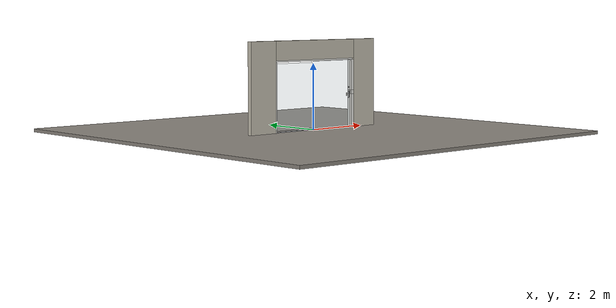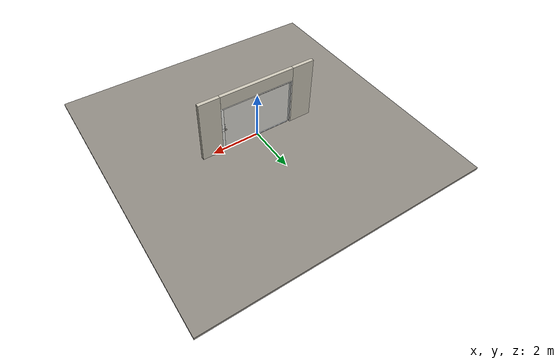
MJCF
<?xml version="1.0" ?>
<mujoco model="db0681_sliding_single_minimal">
  <compiler angle="radian" meshdir="../../hardware" texturedir="../../textures" autolimits="true" inertiafromgeom="false"/>
  <option timestep="0.002" integrator="implicitfast" cone="elliptic" impratio="10" noslip_iterations="3">
    <flag multiccd="enable"/>
  </option>
  <size memory="16M"/>
  <default>
    <geom condim="4" solref="0.005 1" solimp="0.95 0.99 0.001"/>
    <joint solreflimit="0.005 1" solimplimit="0.95 0.99 0.001"/>
    <tendon solreflimit="0.005 1"/>
    <equality solref="0.002 1"/>
  </default>
  <visual>
    <headlight ambient="0.4 0.4 0.4" diffuse="0.7 0.7 0.7" specular="0.2 0.2 0.2"/>
    <quality shadowsize="4096"/>
    <map znear="0.01" zfar="60"/>
  </visual>
  <asset>
    <mesh name="pull_1e5d69a91a" file="pull_1e5d69a91a.obj"/>
    <mesh name="thumbturn_eb5c9899a3" file="thumbturn_eb5c9899a3.obj"/>
    <material name="mat_floor" rgba="0.55 0.53 0.5 1" specular="0.2" shininess="0.15" reflectance="0"/>
    <material name="mat_wall" rgba="0.78 0.76 0.7 1" specular="0.2" shininess="0.1" reflectance="0"/>
    <material name="mat_frame" rgba="0.92 0.92 0.9 1" specular="0.2" shininess="0.6" reflectance="0"/>
    <material name="mat_track" rgba="0.8 0.81 0.83 1" specular="0.8" shininess="0.6" reflectance="0.4"/>
    <material name="mat_fixed_glass" rgba="0.85 0.92 0.95 0.25" specular="0.2" shininess="0.95" reflectance="0.1"/>
    <material name="mat_leaf" rgba="0.85 0.92 0.95 0.25" specular="0.2" shininess="0.95" reflectance="0.1"/>
    <material name="mat_glass_leaf" rgba="0.85 0.92 0.95 0.25" specular="0.2" shininess="0.95" reflectance="0.1"/>
    <material name="mat_patch" rgba="0.75 0.76 0.77 1" specular="0.8" shininess="0.65" reflectance="0.4"/>
    <material name="mat_roller" rgba="0.65 0.66 0.68 1" specular="0.74" shininess="0.5" reflectance="0.36"/>
    <material name="mat_op_stainless" rgba="0.75 0.76 0.77 1" specular="0.8" shininess="0.65" reflectance="0.4"/>
    <material name="mat_op_nickel_satin" rgba="0.72 0.7 0.66 1" specular="0.8" shininess="0.65" reflectance="0.4"/>
    <material name="mat_hook" rgba="0.75 0.76 0.77 1" specular="0.8" shininess="0.65" reflectance="0.4"/>
    <texture name="skybox" type="skybox" builtin="gradient" rgb1="0.6 0.7 0.85" rgb2="0.9 0.92 0.95" width="256" height="256"/>
  </asset>
  <worldbody>
    <light name="sun" pos="1.5 -2.5 4" dir="-0.3 0.5 -0.8" directional="true" diffuse="0.8 0.8 0.8" specular="0.3 0.3 0.3" castshadow="true"/>
    <light name="fill" pos="-1.5 2.5 3" dir="0.3 -0.5 -0.7" directional="true" diffuse="0.35 0.35 0.4" castshadow="false"/>
    <camera name="robot_view" pos="0 -3.45625 2.00625" xyaxes="1 0 0 0 0.26963 0.962964" fovy="52"/>
    <camera name="far_view" pos="0 3.45625 2.00625" xyaxes="-1 0 0 0 -0.26963 0.962964" fovy="52"/>
    <camera name="iso" pos="2.62675 -2.90325 2.55925" xyaxes="0.741536 0.670913 0 -0.242917 0.268487 0.932151" fovy="46"/>
    <camera name="detail_handle" pos="1.595 -0.8825 1.28" xyaxes="0.97561 0.219512 0 -0.070934 0.315262 0.94635" fovy="38"/>
    <geom name="floor" type="box" size="6 6 0.05" pos="0 0 -0.05" material="mat_floor" group="0" contype="1" conaffinity="1" friction="0.8 0.005 0.0001" density="2400"/>
    <geom name="wall_left" type="box" size="0.4725 0.0725 1.35" pos="-2.0275 0 1.35" material="mat_wall" group="0" contype="1" conaffinity="1" friction="0.6 0.005 0.0001" density="800"/>
    <geom name="wall_right" type="box" size="0.4425 0.0725 1.35" pos="2.0575 0 1.35" material="mat_wall" group="0" contype="1" conaffinity="1" friction="0.6 0.005 0.0001" density="800"/>
    <geom name="wall_header" type="box" size="1.585 0.0725 0.289" pos="0.03 0 2.411" material="mat_wall" group="0" contype="1" conaffinity="1" friction="0.6 0.005 0.0001" density="800"/>
    <geom name="jamb_l" type="box" size="0.0225 0.0725 1.0385" pos="-1.5325 0 1.0385" material="mat_frame" group="0" contype="1" conaffinity="1" friction="0.6 0.005 0.0001" density="300"/>
    <geom name="jamb_head" type="box" size="1.555 0.0725 0.0225" pos="0 0 2.0995" material="mat_frame" group="0" contype="1" conaffinity="1" friction="0.6 0.005 0.0001" density="300"/>
    <geom name="fixed_panel_glass" type="box" size="0.735 0.003 0.9885" pos="-0.755 0.04 1.0385" material="mat_fixed_glass" group="0" contype="1" conaffinity="1" friction="0.6 0.005 0.0001" density="2500"/>
    <geom name="bottom_rail" type="box" size="1.49 0.02 0.012" pos="0.065 0 0.012" material="mat_track" group="0" contype="1" conaffinity="1" friction="0.6 0.005 0.0001" density="2700"/>
    <geom name="leaf_hook_keeper" type="box" size="0.008 0.015 0.006" pos="1.523 0 1.08" material="mat_hook" group="0" contype="1" conaffinity="1" friction="0.6 0.005 0.0001" density="7900"/>
    <geom name="jamb_latch_pwall_1080_n" type="box" size="0.0525 0.022 0.06" pos="1.5625 -0.0505 1.08" material="mat_frame" group="0" contype="1" conaffinity="1" friction="0.6 0.005 0.0001" density="300"/>
    <geom name="jamb_latch_pwall_1080_p" type="box" size="0.0525 0.022 0.06" pos="1.5625 0.0505 1.08" material="mat_frame" group="0" contype="1" conaffinity="1" friction="0.6 0.005 0.0001" density="300"/>
    <geom name="jamb_latch_pback_1080" type="box" size="0.004 0.0285 0.06" pos="1.611 0 1.08" material="mat_frame" group="0" contype="1" conaffinity="1" friction="0.6 0.005 0.0001" density="300"/>
    <geom name="jamb_latch_0" type="box" size="0.0525 0.0725 0.51" pos="1.5625 0 0.51" material="mat_frame" group="0" contype="1" conaffinity="1" friction="0.6 0.005 0.0001" density="300"/>
    <geom name="jamb_latch_1" type="box" size="0.0525 0.0725 0.4685" pos="1.5625 0 1.6085" material="mat_frame" group="0" contype="1" conaffinity="1" friction="0.6 0.005 0.0001" density="300"/>
    <site name="approach_point" pos="0 -1.5 0" quat="1 0 0 0" size="0.05" rgba="0.2 0.9 0.2 0.5" group="4"/>
    <site name="goal_point" pos="0 1.5 0" quat="1 0 0 0" size="0.05" rgba="0.2 0.9 0.2 0.5" group="4"/>
    <site name="door_plane_center" pos="0 0 1.0385" quat="1 0 0 0" size="0.02" rgba="0.2 0.9 0.2 0.5" group="4"/>
    <body name="leaf" pos="0.755 0 0">
      <inertial pos="0.002528 -0.000275 1.045824" mass="213.640782" quat="0.500061 0.499563 -0.500418 0.499957" diaginertia="40.299841955 73.273775057 113.492657348"/>
      <joint name="leaf_slide" type="slide" axis="-1 0 0" limited="true" range="0 1.38" damping="12.694589" frictionloss="163.609819" armature="0.5"/>
      <geom name="leaf_glass" type="box" size="0.75 0.0225 1.016" pos="0 0 1.046" material="mat_glass_leaf" group="0" contype="1" conaffinity="1" friction="0.4 0.005 0.0001" density="1"/>
      <geom name="leaf_pull_n" type="mesh" mesh="pull_1e5d69a91a" pos="0.66 -0.0225 1" quat="0.707107 0.707107 0 0" material="mat_op_stainless" group="1" contype="0" conaffinity="0" density="3000"/>
      <geom name="leaf_pull_col_n" type="capsule" size="0.0095 0.08" pos="0.66 -0.0825 1" material="mat_op_stainless" group="3" contype="1" conaffinity="1" rgba="0.8 0.3 0.3 0.25" friction="0.7 0.01 0.0001" density="3000"/>
      <geom name="leaf_ext_pull_p" type="box" size="0.025 0.0005 0.05" pos="0.66 0.023 1" material="mat_op_nickel_satin" group="1" contype="0" conaffinity="0" density="1000"/>
      <site name="leaf_pull_grip_n" pos="0.66 -0.0825 1" quat="1 0 0 0" size="0.012" rgba="0.2 0.9 0.2 0.5" group="4"/>
      <site name="leaf_ext_pull_grip_p" pos="0.66 0.0225 1" quat="1 0 0 0" size="0.012" rgba="0.2 0.9 0.2 0.5" group="4"/>
      <site name="leaf_edge_mid" pos="0.75 0 1.046" quat="1 0 0 0" size="0.02" rgba="0.2 0.9 0.2 0.5" group="4"/>
      <body name="leaf_hook_thumbturn" pos="0.69 -0.0225 1.22">
        <inertial pos="0 -0.012928 0" mass="0.178946" quat="0.5 0.5 0.5 0.5" diaginertia="0.000026045 0.000026215 0.000032438"/>
        <joint name="leaf_hook_thumbturn_hinge" type="hinge" axis="0 1 0" limited="true" range="0 0.05" damping="0.05" frictionloss="0.25" armature="0.005"/>
        <geom name="leaf_hook_tt_mesh" type="mesh" mesh="thumbturn_eb5c9899a3" pos="0 0 0" quat="0.707107 0.707107 0 0" material="mat_hook" group="0" contype="1" conaffinity="1" friction="0.6 0.005 0.0001" density="7100"/>
        <geom name="leaf_hook_tt_col" type="box" size="0.006 0.012 0.016" pos="0 -0.02 0" material="mat_hook" group="3" contype="1" conaffinity="1" rgba="0.8 0.3 0.3 0.25" friction="0.6 0.005 0.0001" density="7100"/>
        <site name="leaf_hook_tt_grip" pos="0 -0.03 0" quat="1 0 0 0" size="0.01" rgba="0.2 0.9 0.2 0.5" group="4"/>
      </body>
      <body name="leaf_hook" pos="0.75 0 1.08">
        <inertial pos="0.026737 0 -0.009263" mass="0.072048" quat="0.200817 -0.200817 0.677991 0.677991" diaginertia="0.000005266 0.00001511 0.000019175"/>
        <joint name="leaf_hook_hinge" type="hinge" axis="0 1 0" limited="true" range="0 1" damping="0.05" frictionloss="0.1" armature="0.005"/>
        <geom name="leaf_hook_arm" type="box" size="0.022 0.005 0.006" pos="0.02 0 -0.016" material="mat_hook" group="0" contype="1" conaffinity="1" friction="0.6 0.005 0.0001" density="7900"/>
        <geom name="leaf_hook_tip" type="box" size="0.006 0.005 0.016" pos="0.036 0 0" material="mat_hook" group="0" contype="1" conaffinity="1" friction="0.6 0.005 0.0001" density="7900"/>
      </body>
    </body>
  </worldbody>
  <equality>
    <joint name="leaf_hook_couple" joint1="leaf_hook_hinge" joint2="leaf_hook_thumbturn_hinge" polycoef="0 1 0 0 0" active="true"/>
  </equality>
  <sensor>
    <jointpos name="leaf_slide_pos" joint="leaf_slide"/>
    <jointvel name="leaf_slide_vel" joint="leaf_slide"/>
    <jointpos name="leaf_hook_thumbturn_hinge_pos" joint="leaf_hook_thumbturn_hinge"/>
    <jointvel name="leaf_hook_thumbturn_hinge_vel" joint="leaf_hook_thumbturn_hinge"/>
    <jointpos name="leaf_hook_hinge_pos" joint="leaf_hook_hinge"/>
    <jointvel name="leaf_hook_hinge_vel" joint="leaf_hook_hinge"/>
  </sensor>
</mujoco>
